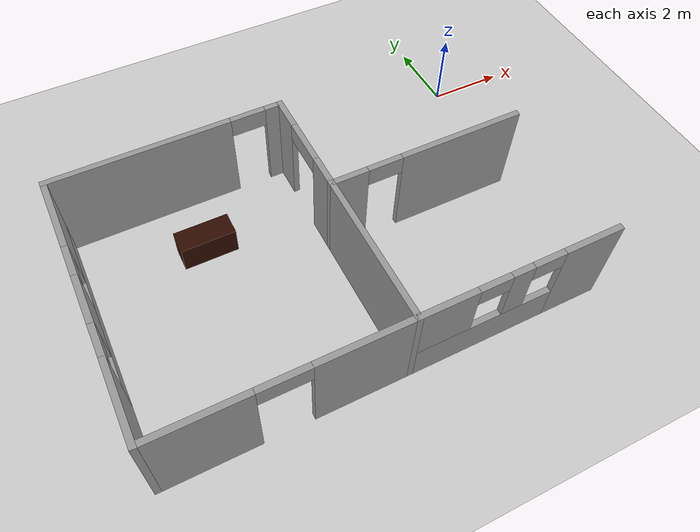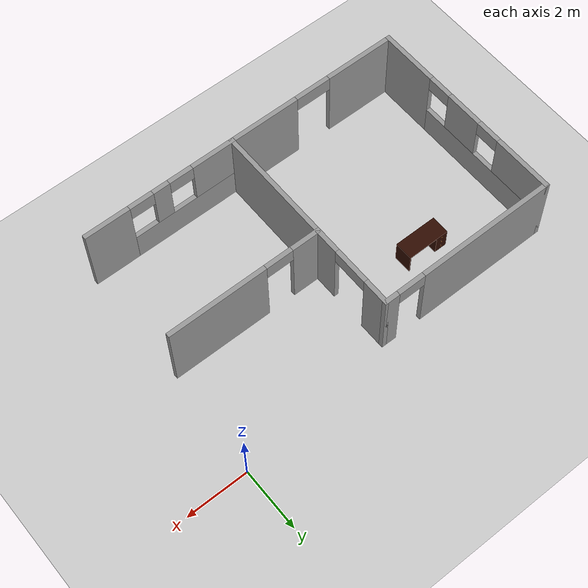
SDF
<sdf version="1.6">
 <world name="default">
  <model name="ground_plane">
   <static>1</static>
   <link name="link">
    <collision name="collision">
     <geometry><plane><normal>0 0 1</normal><size>100 100</size></plane></geometry>
     <surface><friction><ode><mu>100</mu><mu2>50</mu2></ode></friction></surface>
    </collision>
    <visual name="visual">
     <cast_shadows>0</cast_shadows>
     <geometry><plane><normal>0 0 1</normal><size>100 100</size></plane></geometry>
     <material>
      <script><uri>file://media/materials/scripts/gazebo.material</uri><name>Gazebo/Grey</name></script>
     </material>
    </visual>
   </link>
  </model>
  <model name="three_drawer_desk_clone_0">
   <static>1</static>
   <link name="three_drawer_desk">
    <collision name="three_drawer_desk">
     <geometry><mesh><uri>model://three_drawer_desk/meshes/model.dae</uri></mesh></geometry>
    </collision>
    <visual name="three_drawer_desk_mesh">
     <geometry><mesh><uri>model://three_drawer_desk/meshes/model.dae</uri></mesh></geometry>
    </visual>
   </link>
   <pose>-8.08485 -2.2155 0 0 -0 0</pose>
  </model>
  <model name="hospital_v1">
   <link name="Wall_49">
    <pose>-5.275 -5.35 0 0 0 -1.5708</pose>
    <visual name="Wall_49_Visual">
     <pose>0 0 1.25 0 -0 0</pose>
     <geometry><box><size>4 0.15 2.5</size></box></geometry>
     <material>
      <script><uri>file://media/materials/scripts/gazebo.material</uri><name>Gazebo/Grey</name></script>
      <ambient>1 1 1 1</ambient>
     </material>
     <meta><layer>0</layer></meta>
    </visual>
    <collision name="Wall_49_Collision">
     <pose>0 0 1.25 0 -0 0</pose>
     <geometry><box><size>4 0.15 2.5</size></box></geometry>
     <surface>
      <friction>
       <ode><mu>1</mu><mu2>1</mu2><fdir1>0 0 0</fdir1><slip1>0</slip1><slip2>0</slip2></ode>
       <torsional>
        <coefficient>1</coefficient>
        <patch_radius>0</patch_radius>
        <surface_radius>0</surface_radius>
        <use_patch_radius>1</use_patch_radius>
        <ode><slip>0</slip></ode>
       </torsional>
      </friction>
      <bounce><restitution_coefficient>0</restitution_coefficient><threshold>1e+06</threshold></bounce>
      <contact>
       <collide_without_contact>0</collide_without_contact>
       <collide_without_contact_bitmask>1</collide_without_contact_bitmask>
       <collide_bitmask>1</collide_bitmask>
       <ode>
        <soft_cfm>0</soft_cfm>
        <soft_erp>0.2</soft_erp>
        <kp>1e+13</kp>
        <kd>1</kd>
        <max_vel>0.01</max_vel>
        <min_depth>0</min_depth>
       </ode>
       <bullet>
        <split_impulse>1</split_impulse>
        <split_impulse_penetration_threshold>-0.01</split_impulse_penetration_threshold>
        <soft_cfm>0</soft_cfm>
        <soft_erp>0.2</soft_erp>
        <kp>1e+13</kp>
        <kd>1</kd>
       </bullet>
      </contact>
     </surface>
    </collision>
   </link>
   <link name="Wall_5">
    <pose>-8.2 -0.575 0 0 -0 0</pose>
    <visual name="Wall_5_Visual_2">
     <pose>2.05 0 2.25 0 -0 0</pose>
     <geometry><box><size>0.9 0.15 0.5</size></box></geometry>
     <material>
      <script><uri>file://media/materials/scripts/gazebo.material</uri><name>Gazebo/Grey</name></script>
      <ambient>1 1 1 1</ambient>
     </material>
     <meta><layer>0</layer></meta>
    </visual>
    <visual name="Wall_5_Visual_1">
     <pose>2.75 0 1.25 0 -0 0</pose>
     <geometry><box><size>0.5 0.15 2.5</size></box></geometry>
     <material>
      <script><uri>file://media/materials/scripts/gazebo.material</uri><name>Gazebo/Grey</name></script>
      <ambient>1 1 1 1</ambient>
     </material>
     <meta><layer>0</layer></meta>
    </visual>
    <visual name="Wall_5_Visual_0">
     <pose>-0.7 0 1.25 0 -0 0</pose>
     <geometry><box><size>4.6 0.15 2.5</size></box></geometry>
     <material>
      <script><uri>file://media/materials/scripts/gazebo.material</uri><name>Gazebo/Grey</name></script>
      <ambient>1 1 1 1</ambient>
     </material>
     <meta><layer>0</layer></meta>
    </visual>
    <collision name="Wall_5_Collision_2">
     <pose>2.05 0 2.25 0 -0 0</pose>
     <geometry><box><size>0.9 0.15 0.5</size></box></geometry>
     <surface>
      <friction>
       <ode><mu>1</mu><mu2>1</mu2><fdir1>0 0 0</fdir1><slip1>0</slip1><slip2>0</slip2></ode>
       <torsional>
        <coefficient>1</coefficient>
        <patch_radius>0</patch_radius>
        <surface_radius>0</surface_radius>
        <use_patch_radius>1</use_patch_radius>
        <ode><slip>0</slip></ode>
       </torsional>
      </friction>
      <bounce><restitution_coefficient>0</restitution_coefficient><threshold>1e+06</threshold></bounce>
      <contact>
       <collide_without_contact>0</collide_without_contact>
       <collide_without_contact_bitmask>1</collide_without_contact_bitmask>
       <collide_bitmask>1</collide_bitmask>
       <ode>
        <soft_cfm>0</soft_cfm>
        <soft_erp>0.2</soft_erp>
        <kp>1e+13</kp>
        <kd>1</kd>
        <max_vel>0.01</max_vel>
        <min_depth>0</min_depth>
       </ode>
       <bullet>
        <split_impulse>1</split_impulse>
        <split_impulse_penetration_threshold>-0.01</split_impulse_penetration_threshold>
        <soft_cfm>0</soft_cfm>
        <soft_erp>0.2</soft_erp>
        <kp>1e+13</kp>
        <kd>1</kd>
       </bullet>
      </contact>
     </surface>
    </collision>
    <collision name="Wall_5_Collision_1">
     <pose>2.75 0 1.25 0 -0 0</pose>
     <geometry><box><size>0.5 0.15 2.5</size></box></geometry>
     <surface>
      <friction>
       <ode><mu>1</mu><mu2>1</mu2><fdir1>0 0 0</fdir1><slip1>0</slip1><slip2>0</slip2></ode>
       <torsional>
        <coefficient>1</coefficient>
        <patch_radius>0</patch_radius>
        <surface_radius>0</surface_radius>
        <use_patch_radius>1</use_patch_radius>
        <ode><slip>0</slip></ode>
       </torsional>
      </friction>
      <bounce><restitution_coefficient>0</restitution_coefficient><threshold>1e+06</threshold></bounce>
      <contact>
       <collide_without_contact>0</collide_without_contact>
       <collide_without_contact_bitmask>1</collide_without_contact_bitmask>
       <collide_bitmask>1</collide_bitmask>
       <ode>
        <soft_cfm>0</soft_cfm>
        <soft_erp>0.2</soft_erp>
        <kp>1e+13</kp>
        <kd>1</kd>
        <max_vel>0.01</max_vel>
        <min_depth>0</min_depth>
       </ode>
       <bullet>
        <split_impulse>1</split_impulse>
        <split_impulse_penetration_threshold>-0.01</split_impulse_penetration_threshold>
        <soft_cfm>0</soft_cfm>
        <soft_erp>0.2</soft_erp>
        <kp>1e+13</kp>
        <kd>1</kd>
       </bullet>
      </contact>
     </surface>
    </collision>
    <collision name="Wall_5_Collision_0">
     <pose>-0.7 0 1.25 0 -0 0</pose>
     <geometry><box><size>4.6 0.15 2.5</size></box></geometry>
     <surface>
      <friction>
       <ode><mu>1</mu><mu2>1</mu2><fdir1>0 0 0</fdir1><slip1>0</slip1><slip2>0</slip2></ode>
       <torsional>
        <coefficient>1</coefficient>
        <patch_radius>0</patch_radius>
        <surface_radius>0</surface_radius>
        <use_patch_radius>1</use_patch_radius>
        <ode><slip>0</slip></ode>
       </torsional>
      </friction>
      <bounce><restitution_coefficient>0</restitution_coefficient><threshold>1e+06</threshold></bounce>
      <contact>
       <collide_without_contact>0</collide_without_contact>
       <collide_without_contact_bitmask>1</collide_without_contact_bitmask>
       <collide_bitmask>1</collide_bitmask>
       <ode>
        <soft_cfm>0</soft_cfm>
        <soft_erp>0.2</soft_erp>
        <kp>1e+13</kp>
        <kd>1</kd>
        <max_vel>0.01</max_vel>
        <min_depth>0</min_depth>
       </ode>
       <bullet>
        <split_impulse>1</split_impulse>
        <split_impulse_penetration_threshold>-0.01</split_impulse_penetration_threshold>
        <soft_cfm>0</soft_cfm>
        <soft_erp>0.2</soft_erp>
        <kp>1e+13</kp>
        <kd>1</kd>
       </bullet>
      </contact>
     </surface>
    </collision>
   </link>
   <link name="Wall_51">
    <pose>-11.125 -3.925 0 0 -0 1.5708</pose>
    <inertial>
     <mass>1</mass>
     <inertia><ixx>1</ixx><ixy>0</ixy><ixz>0</ixz><iyy>1</iyy><iyz>0</iyz><izz>1</izz></inertia>
    </inertial>
    <visual name="Wall_51_Visual_4">
     <pose>-1.025 0 2.25 0 -0 0</pose>
     <geometry><box><size>0.8 0.15 0.5</size></box></geometry>
     <material>
      <script><uri>file://media/materials/scripts/gazebo.material</uri><name>Gazebo/Grey</name></script>
      <ambient>1 1 1 1</ambient>
      <shader type="vertex"><normal_map>__default__</normal_map></shader>
      <diffuse>0.7 0.7 0.7 1</diffuse>
      <specular>0.01 0.01 0.01 1</specular>
      <emissive>0 0 0 1</emissive>
     </material>
     <meta><layer>0</layer></meta>
    </visual>
    <visual name="Wall_51_Visual_1">
     <pose>1 0 0.5 0 -0 0</pose>
     <geometry><box><size>4.85 0.15 1</size></box></geometry>
     <material>
      <script><uri>file://media/materials/scripts/gazebo.material</uri><name>Gazebo/Grey</name></script>
      <ambient>1 1 1 1</ambient>
      <shader type="vertex"><normal_map>__default__</normal_map></shader>
      <diffuse>0.7 0.7 0.7 1</diffuse>
      <specular>0.01 0.01 0.01 1</specular>
      <emissive>0 0 0 1</emissive>
     </material>
     <meta><layer>0</layer></meta>
    </visual>
    <visual name="Wall_51_Visual_5">
     <pose>1.025 0 2.25 0 -0 0</pose>
     <geometry><box><size>0.8 0.15 0.5</size></box></geometry>
     <material>
      <script><uri>file://media/materials/scripts/gazebo.material</uri><name>Gazebo/Grey</name></script>
      <ambient>1 1 1 1</ambient>
      <shader type="vertex"><normal_map>__default__</normal_map></shader>
      <diffuse>0.7 0.7 0.7 1</diffuse>
      <specular>0.01 0.01 0.01 1</specular>
      <emissive>0 0 0 1</emissive>
     </material>
     <meta><layer>0</layer></meta>
    </visual>
    <visual name="Wall_51_Visual_2">
     <pose>0 0 1.75 0 -0 0</pose>
     <geometry><box><size>1.25 0.15 1.5</size></box></geometry>
     <material>
      <script><uri>file://media/materials/scripts/gazebo.material</uri><name>Gazebo/Grey</name></script>
      <ambient>1 1 1 1</ambient>
      <shader type="vertex"><normal_map>__default__</normal_map></shader>
      <diffuse>0.7 0.7 0.7 1</diffuse>
      <specular>0.01 0.01 0.01 1</specular>
      <emissive>0 0 0 1</emissive>
     </material>
     <meta><layer>0</layer></meta>
    </visual>
    <visual name="Wall_51_Visual_0">
     <pose>-2.425 0 1.25 0 -0 0</pose>
     <geometry><box><size>2 0.15 2.5</size></box></geometry>
     <material>
      <script><uri>file://media/materials/scripts/gazebo.material</uri><name>Gazebo/Grey</name></script>
      <ambient>1 1 1 1</ambient>
      <shader type="vertex"><normal_map>__default__</normal_map></shader>
      <diffuse>0.7 0.7 0.7 1</diffuse>
      <specular>0.01 0.01 0.01 1</specular>
      <emissive>0 0 0 1</emissive>
     </material>
     <meta><layer>0</layer></meta>
    </visual>
    <visual name="Wall_51_Visual_3">
     <pose>2.425 0 1.75 0 -0 0</pose>
     <geometry><box><size>2 0.15 1.5</size></box></geometry>
     <material>
      <script><uri>file://media/materials/scripts/gazebo.material</uri><name>Gazebo/Grey</name></script>
      <ambient>1 1 1 1</ambient>
      <shader type="vertex"><normal_map>__default__</normal_map></shader>
      <diffuse>0.7 0.7 0.7 1</diffuse>
      <specular>0.01 0.01 0.01 1</specular>
      <emissive>0 0 0 1</emissive>
     </material>
     <meta><layer>0</layer></meta>
    </visual>
    <collision name="Wall_51_Collision_3">
     <pose>2.425 0 1.75 0 -0 0</pose>
     <geometry><box><size>2 0.15 1.5</size></box></geometry>
     <surface>
      <friction>
       <ode><mu>1</mu><mu2>1</mu2><fdir1>0 0 0</fdir1><slip1>0</slip1><slip2>0</slip2></ode>
       <torsional>
        <coefficient>1</coefficient>
        <patch_radius>0</patch_radius>
        <surface_radius>0</surface_radius>
        <use_patch_radius>1</use_patch_radius>
        <ode><slip>0</slip></ode>
       </torsional>
      </friction>
      <bounce><restitution_coefficient>0</restitution_coefficient><threshold>1e+06</threshold></bounce>
      <contact>
       <collide_without_contact>0</collide_without_contact>
       <collide_without_contact_bitmask>1</collide_without_contact_bitmask>
       <collide_bitmask>1</collide_bitmask>
       <ode>
        <soft_cfm>0</soft_cfm>
        <soft_erp>0.2</soft_erp>
        <kp>1e+13</kp>
        <kd>1</kd>
        <max_vel>0.01</max_vel>
        <min_depth>0</min_depth>
       </ode>
       <bullet>
        <split_impulse>1</split_impulse>
        <split_impulse_penetration_threshold>-0.01</split_impulse_penetration_threshold>
        <soft_cfm>0</soft_cfm>
        <soft_erp>0.2</soft_erp>
        <kp>1e+13</kp>
        <kd>1</kd>
       </bullet>
      </contact>
     </surface>
    </collision>
    <collision name="Wall_51_Collision_4">
     <pose>-1.025 0 2.25 0 -0 0</pose>
     <geometry><box><size>0.8 0.15 0.5</size></box></geometry>
     <surface>
      <friction>
       <ode><mu>1</mu><mu2>1</mu2><fdir1>0 0 0</fdir1><slip1>0</slip1><slip2>0</slip2></ode>
       <torsional>
        <coefficient>1</coefficient>
        <patch_radius>0</patch_radius>
        <surface_radius>0</surface_radius>
        <use_patch_radius>1</use_patch_radius>
        <ode><slip>0</slip></ode>
       </torsional>
      </friction>
      <bounce><restitution_coefficient>0</restitution_coefficient><threshold>1e+06</threshold></bounce>
      <contact>
       <collide_without_contact>0</collide_without_contact>
       <collide_without_contact_bitmask>1</collide_without_contact_bitmask>
       <collide_bitmask>1</collide_bitmask>
       <ode>
        <soft_cfm>0</soft_cfm>
        <soft_erp>0.2</soft_erp>
        <kp>1e+13</kp>
        <kd>1</kd>
        <max_vel>0.01</max_vel>
        <min_depth>0</min_depth>
       </ode>
       <bullet>
        <split_impulse>1</split_impulse>
        <split_impulse_penetration_threshold>-0.01</split_impulse_penetration_threshold>
        <soft_cfm>0</soft_cfm>
        <soft_erp>0.2</soft_erp>
        <kp>1e+13</kp>
        <kd>1</kd>
       </bullet>
      </contact>
     </surface>
    </collision>
    <collision name="Wall_51_Collision_2">
     <pose>0 0 1.75 0 -0 0</pose>
     <geometry><box><size>1.25 0.15 1.5</size></box></geometry>
     <surface>
      <friction>
       <ode><mu>1</mu><mu2>1</mu2><fdir1>0 0 0</fdir1><slip1>0</slip1><slip2>0</slip2></ode>
       <torsional>
        <coefficient>1</coefficient>
        <patch_radius>0</patch_radius>
        <surface_radius>0</surface_radius>
        <use_patch_radius>1</use_patch_radius>
        <ode><slip>0</slip></ode>
       </torsional>
      </friction>
      <bounce><restitution_coefficient>0</restitution_coefficient><threshold>1e+06</threshold></bounce>
      <contact>
       <collide_without_contact>0</collide_without_contact>
       <collide_without_contact_bitmask>1</collide_without_contact_bitmask>
       <collide_bitmask>1</collide_bitmask>
       <ode>
        <soft_cfm>0</soft_cfm>
        <soft_erp>0.2</soft_erp>
        <kp>1e+13</kp>
        <kd>1</kd>
        <max_vel>0.01</max_vel>
        <min_depth>0</min_depth>
       </ode>
       <bullet>
        <split_impulse>1</split_impulse>
        <split_impulse_penetration_threshold>-0.01</split_impulse_penetration_threshold>
        <soft_cfm>0</soft_cfm>
        <soft_erp>0.2</soft_erp>
        <kp>1e+13</kp>
        <kd>1</kd>
       </bullet>
      </contact>
     </surface>
    </collision>
    <collision name="Wall_51_Collision_1">
     <pose>1 0 0.5 0 -0 0</pose>
     <geometry><box><size>4.85 0.15 1</size></box></geometry>
     <surface>
      <friction>
       <ode><mu>1</mu><mu2>1</mu2><fdir1>0 0 0</fdir1><slip1>0</slip1><slip2>0</slip2></ode>
       <torsional>
        <coefficient>1</coefficient>
        <patch_radius>0</patch_radius>
        <surface_radius>0</surface_radius>
        <use_patch_radius>1</use_patch_radius>
        <ode><slip>0</slip></ode>
       </torsional>
      </friction>
      <bounce><restitution_coefficient>0</restitution_coefficient><threshold>1e+06</threshold></bounce>
      <contact>
       <collide_without_contact>0</collide_without_contact>
       <collide_without_contact_bitmask>1</collide_without_contact_bitmask>
       <collide_bitmask>1</collide_bitmask>
       <ode>
        <soft_cfm>0</soft_cfm>
        <soft_erp>0.2</soft_erp>
        <kp>1e+13</kp>
        <kd>1</kd>
        <max_vel>0.01</max_vel>
        <min_depth>0</min_depth>
       </ode>
       <bullet>
        <split_impulse>1</split_impulse>
        <split_impulse_penetration_threshold>-0.01</split_impulse_penetration_threshold>
        <soft_cfm>0</soft_cfm>
        <soft_erp>0.2</soft_erp>
        <kp>1e+13</kp>
        <kd>1</kd>
       </bullet>
      </contact>
     </surface>
    </collision>
    <collision name="Wall_51_Collision_5">
     <pose>1.025 0 2.25 0 -0 0</pose>
     <geometry><box><size>0.8 0.15 0.5</size></box></geometry>
     <surface>
      <friction>
       <ode><mu>1</mu><mu2>1</mu2><fdir1>0 0 0</fdir1><slip1>0</slip1><slip2>0</slip2></ode>
       <torsional>
        <coefficient>1</coefficient>
        <patch_radius>0</patch_radius>
        <surface_radius>0</surface_radius>
        <use_patch_radius>1</use_patch_radius>
        <ode><slip>0</slip></ode>
       </torsional>
      </friction>
      <bounce><restitution_coefficient>0</restitution_coefficient><threshold>1e+06</threshold></bounce>
      <contact>
       <collide_without_contact>0</collide_without_contact>
       <collide_without_contact_bitmask>1</collide_without_contact_bitmask>
       <collide_bitmask>1</collide_bitmask>
       <ode>
        <soft_cfm>0</soft_cfm>
        <soft_erp>0.2</soft_erp>
        <kp>1e+13</kp>
        <kd>1</kd>
        <max_vel>0.01</max_vel>
        <min_depth>0</min_depth>
       </ode>
       <bullet>
        <split_impulse>1</split_impulse>
        <split_impulse_penetration_threshold>-0.01</split_impulse_penetration_threshold>
        <soft_cfm>0</soft_cfm>
        <soft_erp>0.2</soft_erp>
        <kp>1e+13</kp>
        <kd>1</kd>
       </bullet>
      </contact>
     </surface>
    </collision>
    <collision name="Wall_51_Collision_0">
     <pose>-2.425 0 1.25 0 -0 0</pose>
     <geometry><box><size>2 0.15 2.5</size></box></geometry>
     <surface>
      <friction>
       <ode><mu>1</mu><mu2>1</mu2><fdir1>0 0 0</fdir1><slip1>0</slip1><slip2>0</slip2></ode>
       <torsional>
        <coefficient>1</coefficient>
        <patch_radius>0</patch_radius>
        <surface_radius>0</surface_radius>
        <use_patch_radius>1</use_patch_radius>
        <ode><slip>0</slip></ode>
       </torsional>
      </friction>
      <bounce><restitution_coefficient>0</restitution_coefficient><threshold>1e+06</threshold></bounce>
      <contact>
       <collide_without_contact>0</collide_without_contact>
       <collide_without_contact_bitmask>1</collide_without_contact_bitmask>
       <collide_bitmask>1</collide_bitmask>
       <ode>
        <soft_cfm>0</soft_cfm>
        <soft_erp>0.2</soft_erp>
        <kp>1e+13</kp>
        <kd>1</kd>
        <max_vel>0.01</max_vel>
        <min_depth>0</min_depth>
       </ode>
       <bullet>
        <split_impulse>1</split_impulse>
        <split_impulse_penetration_threshold>-0.01</split_impulse_penetration_threshold>
        <soft_cfm>0</soft_cfm>
        <soft_erp>0.2</soft_erp>
        <kp>1e+13</kp>
        <kd>1</kd>
       </bullet>
      </contact>
     </surface>
    </collision>
   </link>
   <link name="Wall_53">
    <pose>-2.775 -7.275 0 0 -0 3.14159</pose>
    <inertial>
     <mass>1</mass>
     <inertia><ixx>1</ixx><ixy>0</ixy><ixz>0</ixz><iyy>1</iyy><iyz>0</iyz><izz>1</izz></inertia>
    </inertial>
    <visual name="Wall_53_Visual_4">
     <pose>-0.675 0 2.25 0 -0 0</pose>
     <geometry><box><size>0.8 0.15 0.5</size></box></geometry>
     <material>
      <script><uri>file://media/materials/scripts/gazebo.material</uri><name>Gazebo/Grey</name></script>
      <ambient>1 1 1 1</ambient>
      <shader type="vertex"><normal_map>__default__</normal_map></shader>
      <diffuse>0.7 0.7 0.7 1</diffuse>
      <specular>0.01 0.01 0.01 1</specular>
      <emissive>0 0 0 1</emissive>
     </material>
     <meta><layer>0</layer></meta>
    </visual>
    <visual name="Wall_53_Visual_0">
     <pose>-1.825 0 1.25 0 -0 0</pose>
     <geometry><box><size>1.5 0.15 2.5</size></box></geometry>
     <material>
      <script><uri>file://media/materials/scripts/gazebo.material</uri><name>Gazebo/Grey</name></script>
      <ambient>1 1 1 1</ambient>
      <shader type="vertex"><normal_map>__default__</normal_map></shader>
      <diffuse>0.7 0.7 0.7 1</diffuse>
      <specular>0.01 0.01 0.01 1</specular>
      <emissive>0 0 0 1</emissive>
     </material>
     <meta><layer>0</layer></meta>
    </visual>
    <visual name="Wall_53_Visual_2">
     <pose>0 0 1.75 0 -0 0</pose>
     <geometry><box><size>0.55 0.15 1.5</size></box></geometry>
     <material>
      <script><uri>file://media/materials/scripts/gazebo.material</uri><name>Gazebo/Grey</name></script>
      <ambient>1 1 1 1</ambient>
      <shader type="vertex"><normal_map>__default__</normal_map></shader>
      <diffuse>0.7 0.7 0.7 1</diffuse>
      <specular>0.01 0.01 0.01 1</specular>
      <emissive>0 0 0 1</emissive>
     </material>
     <meta><layer>0</layer></meta>
    </visual>
    <visual name="Wall_53_Visual_5">
     <pose>0.675 0 2.25 0 -0 0</pose>
     <geometry><box><size>0.8 0.15 0.5</size></box></geometry>
     <material>
      <script><uri>file://media/materials/scripts/gazebo.material</uri><name>Gazebo/Grey</name></script>
      <ambient>1 1 1 1</ambient>
      <shader type="vertex"><normal_map>__default__</normal_map></shader>
      <diffuse>0.7 0.7 0.7 1</diffuse>
      <specular>0.01 0.01 0.01 1</specular>
      <emissive>0 0 0 1</emissive>
     </material>
     <meta><layer>0</layer></meta>
    </visual>
    <visual name="Wall_53_Visual_1">
     <pose>0.75 0 0.5 0 -0 0</pose>
     <geometry><box><size>3.65 0.15 1</size></box></geometry>
     <material>
      <script><uri>file://media/materials/scripts/gazebo.material</uri><name>Gazebo/Grey</name></script>
      <ambient>1 1 1 1</ambient>
      <shader type="vertex"><normal_map>__default__</normal_map></shader>
      <diffuse>0.7 0.7 0.7 1</diffuse>
      <specular>0.01 0.01 0.01 1</specular>
      <emissive>0 0 0 1</emissive>
     </material>
     <meta><layer>0</layer></meta>
    </visual>
    <visual name="Wall_53_Visual_3">
     <pose>1.825 0 1.75 0 -0 0</pose>
     <geometry><box><size>1.5 0.15 1.5</size></box></geometry>
     <material>
      <script><uri>file://media/materials/scripts/gazebo.material</uri><name>Gazebo/Grey</name></script>
      <ambient>1 1 1 1</ambient>
      <shader type="vertex"><normal_map>__default__</normal_map></shader>
      <diffuse>0.7 0.7 0.7 1</diffuse>
      <specular>0.01 0.01 0.01 1</specular>
      <emissive>0 0 0 1</emissive>
     </material>
     <meta><layer>0</layer></meta>
    </visual>
    <collision name="Wall_53_Collision_4">
     <pose>-0.675 0 2.25 0 -0 0</pose>
     <geometry><box><size>0.8 0.15 0.5</size></box></geometry>
     <surface>
      <friction>
       <ode><mu>1</mu><mu2>1</mu2><fdir1>0 0 0</fdir1><slip1>0</slip1><slip2>0</slip2></ode>
       <torsional>
        <coefficient>1</coefficient>
        <patch_radius>0</patch_radius>
        <surface_radius>0</surface_radius>
        <use_patch_radius>1</use_patch_radius>
        <ode><slip>0</slip></ode>
       </torsional>
      </friction>
      <bounce><restitution_coefficient>0</restitution_coefficient><threshold>1e+06</threshold></bounce>
      <contact>
       <collide_without_contact>0</collide_without_contact>
       <collide_without_contact_bitmask>1</collide_without_contact_bitmask>
       <collide_bitmask>1</collide_bitmask>
       <ode>
        <soft_cfm>0</soft_cfm>
        <soft_erp>0.2</soft_erp>
        <kp>1e+13</kp>
        <kd>1</kd>
        <max_vel>0.01</max_vel>
        <min_depth>0</min_depth>
       </ode>
       <bullet>
        <split_impulse>1</split_impulse>
        <split_impulse_penetration_threshold>-0.01</split_impulse_penetration_threshold>
        <soft_cfm>0</soft_cfm>
        <soft_erp>0.2</soft_erp>
        <kp>1e+13</kp>
        <kd>1</kd>
       </bullet>
      </contact>
     </surface>
    </collision>
    <collision name="Wall_53_Collision_1">
     <pose>0.75 0 0.5 0 -0 0</pose>
     <geometry><box><size>3.65 0.15 1</size></box></geometry>
     <surface>
      <friction>
       <ode><mu>1</mu><mu2>1</mu2><fdir1>0 0 0</fdir1><slip1>0</slip1><slip2>0</slip2></ode>
       <torsional>
        <coefficient>1</coefficient>
        <patch_radius>0</patch_radius>
        <surface_radius>0</surface_radius>
        <use_patch_radius>1</use_patch_radius>
        <ode><slip>0</slip></ode>
       </torsional>
      </friction>
      <bounce><restitution_coefficient>0</restitution_coefficient><threshold>1e+06</threshold></bounce>
      <contact>
       <collide_without_contact>0</collide_without_contact>
       <collide_without_contact_bitmask>1</collide_without_contact_bitmask>
       <collide_bitmask>1</collide_bitmask>
       <ode>
        <soft_cfm>0</soft_cfm>
        <soft_erp>0.2</soft_erp>
        <kp>1e+13</kp>
        <kd>1</kd>
        <max_vel>0.01</max_vel>
        <min_depth>0</min_depth>
       </ode>
       <bullet>
        <split_impulse>1</split_impulse>
        <split_impulse_penetration_threshold>-0.01</split_impulse_penetration_threshold>
        <soft_cfm>0</soft_cfm>
        <soft_erp>0.2</soft_erp>
        <kp>1e+13</kp>
        <kd>1</kd>
       </bullet>
      </contact>
     </surface>
    </collision>
    <collision name="Wall_53_Collision_3">
     <pose>1.825 0 1.75 0 -0 0</pose>
     <geometry><box><size>1.5 0.15 1.5</size></box></geometry>
     <surface>
      <friction>
       <ode><mu>1</mu><mu2>1</mu2><fdir1>0 0 0</fdir1><slip1>0</slip1><slip2>0</slip2></ode>
       <torsional>
        <coefficient>1</coefficient>
        <patch_radius>0</patch_radius>
        <surface_radius>0</surface_radius>
        <use_patch_radius>1</use_patch_radius>
        <ode><slip>0</slip></ode>
       </torsional>
      </friction>
      <bounce><restitution_coefficient>0</restitution_coefficient><threshold>1e+06</threshold></bounce>
      <contact>
       <collide_without_contact>0</collide_without_contact>
       <collide_without_contact_bitmask>1</collide_without_contact_bitmask>
       <collide_bitmask>1</collide_bitmask>
       <ode>
        <soft_cfm>0</soft_cfm>
        <soft_erp>0.2</soft_erp>
        <kp>1e+13</kp>
        <kd>1</kd>
        <max_vel>0.01</max_vel>
        <min_depth>0</min_depth>
       </ode>
       <bullet>
        <split_impulse>1</split_impulse>
        <split_impulse_penetration_threshold>-0.01</split_impulse_penetration_threshold>
        <soft_cfm>0</soft_cfm>
        <soft_erp>0.2</soft_erp>
        <kp>1e+13</kp>
        <kd>1</kd>
       </bullet>
      </contact>
     </surface>
    </collision>
    <collision name="Wall_53_Collision_0">
     <pose>-1.825 0 1.25 0 -0 0</pose>
     <geometry><box><size>1.5 0.15 2.5</size></box></geometry>
     <surface>
      <friction>
       <ode><mu>1</mu><mu2>1</mu2><fdir1>0 0 0</fdir1><slip1>0</slip1><slip2>0</slip2></ode>
       <torsional>
        <coefficient>1</coefficient>
        <patch_radius>0</patch_radius>
        <surface_radius>0</surface_radius>
        <use_patch_radius>1</use_patch_radius>
        <ode><slip>0</slip></ode>
       </torsional>
      </friction>
      <bounce><restitution_coefficient>0</restitution_coefficient><threshold>1e+06</threshold></bounce>
      <contact>
       <collide_without_contact>0</collide_without_contact>
       <collide_without_contact_bitmask>1</collide_without_contact_bitmask>
       <collide_bitmask>1</collide_bitmask>
       <ode>
        <soft_cfm>0</soft_cfm>
        <soft_erp>0.2</soft_erp>
        <kp>1e+13</kp>
        <kd>1</kd>
        <max_vel>0.01</max_vel>
        <min_depth>0</min_depth>
       </ode>
       <bullet>
        <split_impulse>1</split_impulse>
        <split_impulse_penetration_threshold>-0.01</split_impulse_penetration_threshold>
        <soft_cfm>0</soft_cfm>
        <soft_erp>0.2</soft_erp>
        <kp>1e+13</kp>
        <kd>1</kd>
       </bullet>
      </contact>
     </surface>
    </collision>
    <collision name="Wall_53_Collision_5">
     <pose>0.675 0 2.25 0 -0 0</pose>
     <geometry><box><size>0.8 0.15 0.5</size></box></geometry>
     <surface>
      <friction>
       <ode><mu>1</mu><mu2>1</mu2><fdir1>0 0 0</fdir1><slip1>0</slip1><slip2>0</slip2></ode>
       <torsional>
        <coefficient>1</coefficient>
        <patch_radius>0</patch_radius>
        <surface_radius>0</surface_radius>
        <use_patch_radius>1</use_patch_radius>
        <ode><slip>0</slip></ode>
       </torsional>
      </friction>
      <bounce><restitution_coefficient>0</restitution_coefficient><threshold>1e+06</threshold></bounce>
      <contact>
       <collide_without_contact>0</collide_without_contact>
       <collide_without_contact_bitmask>1</collide_without_contact_bitmask>
       <collide_bitmask>1</collide_bitmask>
       <ode>
        <soft_cfm>0</soft_cfm>
        <soft_erp>0.2</soft_erp>
        <kp>1e+13</kp>
        <kd>1</kd>
        <max_vel>0.01</max_vel>
        <min_depth>0</min_depth>
       </ode>
       <bullet>
        <split_impulse>1</split_impulse>
        <split_impulse_penetration_threshold>-0.01</split_impulse_penetration_threshold>
        <soft_cfm>0</soft_cfm>
        <soft_erp>0.2</soft_erp>
        <kp>1e+13</kp>
        <kd>1</kd>
       </bullet>
      </contact>
     </surface>
    </collision>
    <collision name="Wall_53_Collision_2">
     <pose>0 0 1.75 0 -0 0</pose>
     <geometry><box><size>0.55 0.15 1.5</size></box></geometry>
     <surface>
      <friction>
       <ode><mu>1</mu><mu2>1</mu2><fdir1>0 0 0</fdir1><slip1>0</slip1><slip2>0</slip2></ode>
       <torsional>
        <coefficient>1</coefficient>
        <patch_radius>0</patch_radius>
        <surface_radius>0</surface_radius>
        <use_patch_radius>1</use_patch_radius>
        <ode><slip>0</slip></ode>
       </torsional>
      </friction>
      <bounce><restitution_coefficient>0</restitution_coefficient><threshold>1e+06</threshold></bounce>
      <contact>
       <collide_without_contact>0</collide_without_contact>
       <collide_without_contact_bitmask>1</collide_without_contact_bitmask>
       <collide_bitmask>1</collide_bitmask>
       <ode>
        <soft_cfm>0</soft_cfm>
        <soft_erp>0.2</soft_erp>
        <kp>1e+13</kp>
        <kd>1</kd>
        <max_vel>0.01</max_vel>
        <min_depth>0</min_depth>
       </ode>
       <bullet>
        <split_impulse>1</split_impulse>
        <split_impulse_penetration_threshold>-0.01</split_impulse_penetration_threshold>
        <soft_cfm>0</soft_cfm>
        <soft_erp>0.2</soft_erp>
        <kp>1e+13</kp>
        <kd>1</kd>
       </bullet>
      </contact>
     </surface>
    </collision>
   </link>
   <link name="Wall_55">
    <pose>-2.775 -3.425 0 0 -0 3.14159</pose>
    <visual name="Wall_55_Visual_1">
     <pose>2.075 0 1.25 0 -0 0</pose>
     <geometry><box><size>1 0.15 2.5</size></box></geometry>
     <material>
      <script><uri>file://media/materials/scripts/gazebo.material</uri><name>Gazebo/Grey</name></script>
      <ambient>1 1 1 1</ambient>
     </material>
     <meta><layer>0</layer></meta>
    </visual>
    <visual name="Wall_55_Visual_0">
     <pose>-0.95 0 1.25 0 -0 0</pose>
     <geometry><box><size>3.25 0.15 2.5</size></box></geometry>
     <material>
      <script><uri>file://media/materials/scripts/gazebo.material</uri><name>Gazebo/Grey</name></script>
      <ambient>1 1 1 1</ambient>
     </material>
     <meta><layer>0</layer></meta>
    </visual>
    <visual name="Wall_55_Visual_2">
     <pose>1.125 0 2.25 0 -0 0</pose>
     <geometry><box><size>0.9 0.15 0.5</size></box></geometry>
     <material>
      <script><uri>file://media/materials/scripts/gazebo.material</uri><name>Gazebo/Grey</name></script>
      <ambient>1 1 1 1</ambient>
     </material>
     <meta><layer>0</layer></meta>
    </visual>
    <collision name="Wall_55_Collision_2">
     <pose>1.125 0 2.25 0 -0 0</pose>
     <geometry><box><size>0.9 0.15 0.5</size></box></geometry>
     <surface>
      <friction>
       <ode><mu>1</mu><mu2>1</mu2><fdir1>0 0 0</fdir1><slip1>0</slip1><slip2>0</slip2></ode>
       <torsional>
        <coefficient>1</coefficient>
        <patch_radius>0</patch_radius>
        <surface_radius>0</surface_radius>
        <use_patch_radius>1</use_patch_radius>
        <ode><slip>0</slip></ode>
       </torsional>
      </friction>
      <bounce><restitution_coefficient>0</restitution_coefficient><threshold>1e+06</threshold></bounce>
      <contact>
       <collide_without_contact>0</collide_without_contact>
       <collide_without_contact_bitmask>1</collide_without_contact_bitmask>
       <collide_bitmask>1</collide_bitmask>
       <ode>
        <soft_cfm>0</soft_cfm>
        <soft_erp>0.2</soft_erp>
        <kp>1e+13</kp>
        <kd>1</kd>
        <max_vel>0.01</max_vel>
        <min_depth>0</min_depth>
       </ode>
       <bullet>
        <split_impulse>1</split_impulse>
        <split_impulse_penetration_threshold>-0.01</split_impulse_penetration_threshold>
        <soft_cfm>0</soft_cfm>
        <soft_erp>0.2</soft_erp>
        <kp>1e+13</kp>
        <kd>1</kd>
       </bullet>
      </contact>
     </surface>
    </collision>
    <collision name="Wall_55_Collision_0">
     <pose>-0.95 0 1.25 0 -0 0</pose>
     <geometry><box><size>3.25 0.15 2.5</size></box></geometry>
     <surface>
      <friction>
       <ode><mu>1</mu><mu2>1</mu2><fdir1>0 0 0</fdir1><slip1>0</slip1><slip2>0</slip2></ode>
       <torsional>
        <coefficient>1</coefficient>
        <patch_radius>0</patch_radius>
        <surface_radius>0</surface_radius>
        <use_patch_radius>1</use_patch_radius>
        <ode><slip>0</slip></ode>
       </torsional>
      </friction>
      <bounce><restitution_coefficient>0</restitution_coefficient><threshold>1e+06</threshold></bounce>
      <contact>
       <collide_without_contact>0</collide_without_contact>
       <collide_without_contact_bitmask>1</collide_without_contact_bitmask>
       <collide_bitmask>1</collide_bitmask>
       <ode>
        <soft_cfm>0</soft_cfm>
        <soft_erp>0.2</soft_erp>
        <kp>1e+13</kp>
        <kd>1</kd>
        <max_vel>0.01</max_vel>
        <min_depth>0</min_depth>
       </ode>
       <bullet>
        <split_impulse>1</split_impulse>
        <split_impulse_penetration_threshold>-0.01</split_impulse_penetration_threshold>
        <soft_cfm>0</soft_cfm>
        <soft_erp>0.2</soft_erp>
        <kp>1e+13</kp>
        <kd>1</kd>
       </bullet>
      </contact>
     </surface>
    </collision>
    <collision name="Wall_55_Collision_1">
     <pose>2.075 0 1.25 0 -0 0</pose>
     <geometry><box><size>1 0.15 2.5</size></box></geometry>
     <surface>
      <friction>
       <ode><mu>1</mu><mu2>1</mu2><fdir1>0 0 0</fdir1><slip1>0</slip1><slip2>0</slip2></ode>
       <torsional>
        <coefficient>1</coefficient>
        <patch_radius>0</patch_radius>
        <surface_radius>0</surface_radius>
        <use_patch_radius>1</use_patch_radius>
        <ode><slip>0</slip></ode>
       </torsional>
      </friction>
      <bounce><restitution_coefficient>0</restitution_coefficient><threshold>1e+06</threshold></bounce>
      <contact>
       <collide_without_contact>0</collide_without_contact>
       <collide_without_contact_bitmask>1</collide_without_contact_bitmask>
       <collide_bitmask>1</collide_bitmask>
       <ode>
        <soft_cfm>0</soft_cfm>
        <soft_erp>0.2</soft_erp>
        <kp>1e+13</kp>
        <kd>1</kd>
        <max_vel>0.01</max_vel>
        <min_depth>0</min_depth>
       </ode>
       <bullet>
        <split_impulse>1</split_impulse>
        <split_impulse_penetration_threshold>-0.01</split_impulse_penetration_threshold>
        <soft_cfm>0</soft_cfm>
        <soft_erp>0.2</soft_erp>
        <kp>1e+13</kp>
        <kd>1</kd>
       </bullet>
      </contact>
     </surface>
    </collision>
   </link>
   <link name="Wall_57">
    <pose>-5.275 -2 0 0 -0 1.5708</pose>
    <visual name="Wall_57_Visual_2">
     <pose>0 0 2.25 0 -0 0</pose>
     <geometry><box><size>1.2 0.15 0.5</size></box></geometry>
     <material>
      <script><uri>file://media/materials/scripts/gazebo.material</uri><name>Gazebo/Grey</name></script>
      <ambient>1 1 1 1</ambient>
     </material>
     <meta><layer>0</layer></meta>
    </visual>
    <visual name="Wall_57_Visual_1">
     <pose>1.05 0 1.25 0 -0 0</pose>
     <geometry><box><size>0.9 0.15 2.5</size></box></geometry>
     <material>
      <script><uri>file://media/materials/scripts/gazebo.material</uri><name>Gazebo/Grey</name></script>
      <ambient>1 1 1 1</ambient>
     </material>
     <meta><layer>0</layer></meta>
    </visual>
    <visual name="Wall_57_Visual_0">
     <pose>-1.05 0 1.25 0 -0 0</pose>
     <geometry><box><size>0.9 0.15 2.5</size></box></geometry>
     <material>
      <script><uri>file://media/materials/scripts/gazebo.material</uri><name>Gazebo/Grey</name></script>
      <ambient>1 1 1 1</ambient>
     </material>
     <meta><layer>0</layer></meta>
    </visual>
    <collision name="Wall_57_Collision_2">
     <pose>0 0 2.25 0 -0 0</pose>
     <geometry><box><size>1.2 0.15 0.5</size></box></geometry>
     <surface>
      <friction>
       <ode><mu>1</mu><mu2>1</mu2><fdir1>0 0 0</fdir1><slip1>0</slip1><slip2>0</slip2></ode>
       <torsional>
        <coefficient>1</coefficient>
        <patch_radius>0</patch_radius>
        <surface_radius>0</surface_radius>
        <use_patch_radius>1</use_patch_radius>
        <ode><slip>0</slip></ode>
       </torsional>
      </friction>
      <bounce><restitution_coefficient>0</restitution_coefficient><threshold>1e+06</threshold></bounce>
      <contact>
       <collide_without_contact>0</collide_without_contact>
       <collide_without_contact_bitmask>1</collide_without_contact_bitmask>
       <collide_bitmask>1</collide_bitmask>
       <ode>
        <soft_cfm>0</soft_cfm>
        <soft_erp>0.2</soft_erp>
        <kp>1e+13</kp>
        <kd>1</kd>
        <max_vel>0.01</max_vel>
        <min_depth>0</min_depth>
       </ode>
       <bullet>
        <split_impulse>1</split_impulse>
        <split_impulse_penetration_threshold>-0.01</split_impulse_penetration_threshold>
        <soft_cfm>0</soft_cfm>
        <soft_erp>0.2</soft_erp>
        <kp>1e+13</kp>
        <kd>1</kd>
       </bullet>
      </contact>
     </surface>
    </collision>
    <collision name="Wall_57_Collision_0">
     <pose>-1.05 0 1.25 0 -0 0</pose>
     <geometry><box><size>0.9 0.15 2.5</size></box></geometry>
     <surface>
      <friction>
       <ode><mu>1</mu><mu2>1</mu2><fdir1>0 0 0</fdir1><slip1>0</slip1><slip2>0</slip2></ode>
       <torsional>
        <coefficient>1</coefficient>
        <patch_radius>0</patch_radius>
        <surface_radius>0</surface_radius>
        <use_patch_radius>1</use_patch_radius>
        <ode><slip>0</slip></ode>
       </torsional>
      </friction>
      <bounce><restitution_coefficient>0</restitution_coefficient><threshold>1e+06</threshold></bounce>
      <contact>
       <collide_without_contact>0</collide_without_contact>
       <collide_without_contact_bitmask>1</collide_without_contact_bitmask>
       <collide_bitmask>1</collide_bitmask>
       <ode>
        <soft_cfm>0</soft_cfm>
        <soft_erp>0.2</soft_erp>
        <kp>1e+13</kp>
        <kd>1</kd>
        <max_vel>0.01</max_vel>
        <min_depth>0</min_depth>
       </ode>
       <bullet>
        <split_impulse>1</split_impulse>
        <split_impulse_penetration_threshold>-0.01</split_impulse_penetration_threshold>
        <soft_cfm>0</soft_cfm>
        <soft_erp>0.2</soft_erp>
        <kp>1e+13</kp>
        <kd>1</kd>
       </bullet>
      </contact>
     </surface>
    </collision>
    <collision name="Wall_57_Collision_1">
     <pose>1.05 0 1.25 0 -0 0</pose>
     <geometry><box><size>0.9 0.15 2.5</size></box></geometry>
     <surface>
      <friction>
       <ode><mu>1</mu><mu2>1</mu2><fdir1>0 0 0</fdir1><slip1>0</slip1><slip2>0</slip2></ode>
       <torsional>
        <coefficient>1</coefficient>
        <patch_radius>0</patch_radius>
        <surface_radius>0</surface_radius>
        <use_patch_radius>1</use_patch_radius>
        <ode><slip>0</slip></ode>
       </torsional>
      </friction>
      <bounce><restitution_coefficient>0</restitution_coefficient><threshold>1e+06</threshold></bounce>
      <contact>
       <collide_without_contact>0</collide_without_contact>
       <collide_without_contact_bitmask>1</collide_without_contact_bitmask>
       <collide_bitmask>1</collide_bitmask>
       <ode>
        <soft_cfm>0</soft_cfm>
        <soft_erp>0.2</soft_erp>
        <kp>1e+13</kp>
        <kd>1</kd>
        <max_vel>0.01</max_vel>
        <min_depth>0</min_depth>
       </ode>
       <bullet>
        <split_impulse>1</split_impulse>
        <split_impulse_penetration_threshold>-0.01</split_impulse_penetration_threshold>
        <soft_cfm>0</soft_cfm>
        <soft_erp>0.2</soft_erp>
        <kp>1e+13</kp>
        <kd>1</kd>
       </bullet>
      </contact>
     </surface>
    </collision>
   </link>
   <link name="Wall_59">
    <pose>-8.2 -7.275 0 0 -0 0</pose>
    <visual name="Wall_59_Visual_0">
     <pose>-1.8 0 1.25 0 -0 0</pose>
     <geometry><box><size>2.4 0.15 2.5</size></box></geometry>
     <material>
      <script><uri>file://media/materials/scripts/gazebo.material</uri><name>Gazebo/Grey</name></script>
      <ambient>1 1 1 1</ambient>
     </material>
     <meta><layer>0</layer></meta>
    </visual>
    <visual name="Wall_59_Visual_2">
     <pose>0 0 2.25 0 -0 0</pose>
     <geometry><box><size>1.2 0.15 0.5</size></box></geometry>
     <material>
      <script><uri>file://media/materials/scripts/gazebo.material</uri><name>Gazebo/Grey</name></script>
      <ambient>1 1 1 1</ambient>
     </material>
     <meta><layer>0</layer></meta>
    </visual>
    <visual name="Wall_59_Visual_1">
     <pose>1.8 0 1.25 0 -0 0</pose>
     <geometry><box><size>2.4 0.15 2.5</size></box></geometry>
     <material>
      <script><uri>file://media/materials/scripts/gazebo.material</uri><name>Gazebo/Grey</name></script>
      <ambient>1 1 1 1</ambient>
     </material>
     <meta><layer>0</layer></meta>
    </visual>
    <collision name="Wall_59_Collision_1">
     <pose>1.8 0 1.25 0 -0 0</pose>
     <geometry><box><size>2.4 0.15 2.5</size></box></geometry>
     <surface>
      <friction>
       <ode><mu>1</mu><mu2>1</mu2><fdir1>0 0 0</fdir1><slip1>0</slip1><slip2>0</slip2></ode>
       <torsional>
        <coefficient>1</coefficient>
        <patch_radius>0</patch_radius>
        <surface_radius>0</surface_radius>
        <use_patch_radius>1</use_patch_radius>
        <ode><slip>0</slip></ode>
       </torsional>
      </friction>
      <bounce><restitution_coefficient>0</restitution_coefficient><threshold>1e+06</threshold></bounce>
      <contact>
       <collide_without_contact>0</collide_without_contact>
       <collide_without_contact_bitmask>1</collide_without_contact_bitmask>
       <collide_bitmask>1</collide_bitmask>
       <ode>
        <soft_cfm>0</soft_cfm>
        <soft_erp>0.2</soft_erp>
        <kp>1e+13</kp>
        <kd>1</kd>
        <max_vel>0.01</max_vel>
        <min_depth>0</min_depth>
       </ode>
       <bullet>
        <split_impulse>1</split_impulse>
        <split_impulse_penetration_threshold>-0.01</split_impulse_penetration_threshold>
        <soft_cfm>0</soft_cfm>
        <soft_erp>0.2</soft_erp>
        <kp>1e+13</kp>
        <kd>1</kd>
       </bullet>
      </contact>
     </surface>
    </collision>
    <collision name="Wall_59_Collision_0">
     <pose>-1.8 0 1.25 0 -0 0</pose>
     <geometry><box><size>2.4 0.15 2.5</size></box></geometry>
     <surface>
      <friction>
       <ode><mu>1</mu><mu2>1</mu2><fdir1>0 0 0</fdir1><slip1>0</slip1><slip2>0</slip2></ode>
       <torsional>
        <coefficient>1</coefficient>
        <patch_radius>0</patch_radius>
        <surface_radius>0</surface_radius>
        <use_patch_radius>1</use_patch_radius>
        <ode><slip>0</slip></ode>
       </torsional>
      </friction>
      <bounce><restitution_coefficient>0</restitution_coefficient><threshold>1e+06</threshold></bounce>
      <contact>
       <collide_without_contact>0</collide_without_contact>
       <collide_without_contact_bitmask>1</collide_without_contact_bitmask>
       <collide_bitmask>1</collide_bitmask>
       <ode>
        <soft_cfm>0</soft_cfm>
        <soft_erp>0.2</soft_erp>
        <kp>1e+13</kp>
        <kd>1</kd>
        <max_vel>0.01</max_vel>
        <min_depth>0</min_depth>
       </ode>
       <bullet>
        <split_impulse>1</split_impulse>
        <split_impulse_penetration_threshold>-0.01</split_impulse_penetration_threshold>
        <soft_cfm>0</soft_cfm>
        <soft_erp>0.2</soft_erp>
        <kp>1e+13</kp>
        <kd>1</kd>
       </bullet>
      </contact>
     </surface>
    </collision>
    <collision name="Wall_59_Collision_2">
     <pose>0 0 2.25 0 -0 0</pose>
     <geometry><box><size>1.2 0.15 0.5</size></box></geometry>
     <surface>
      <friction>
       <ode><mu>1</mu><mu2>1</mu2><fdir1>0 0 0</fdir1><slip1>0</slip1><slip2>0</slip2></ode>
       <torsional>
        <coefficient>1</coefficient>
        <patch_radius>0</patch_radius>
        <surface_radius>0</surface_radius>
        <use_patch_radius>1</use_patch_radius>
        <ode><slip>0</slip></ode>
       </torsional>
      </friction>
      <bounce><restitution_coefficient>0</restitution_coefficient><threshold>1e+06</threshold></bounce>
      <contact>
       <collide_without_contact>0</collide_without_contact>
       <collide_without_contact_bitmask>1</collide_without_contact_bitmask>
       <collide_bitmask>1</collide_bitmask>
       <ode>
        <soft_cfm>0</soft_cfm>
        <soft_erp>0.2</soft_erp>
        <kp>1e+13</kp>
        <kd>1</kd>
        <max_vel>0.01</max_vel>
        <min_depth>0</min_depth>
       </ode>
       <bullet>
        <split_impulse>1</split_impulse>
        <split_impulse_penetration_threshold>-0.01</split_impulse_penetration_threshold>
        <soft_cfm>0</soft_cfm>
        <soft_erp>0.2</soft_erp>
        <kp>1e+13</kp>
        <kd>1</kd>
       </bullet>
      </contact>
     </surface>
    </collision>
   </link>
   <static>1</static>
   <pose>0.01191 -0.04531 0 0 -0 0</pose>
  </model>
 </world>
</sdf>
